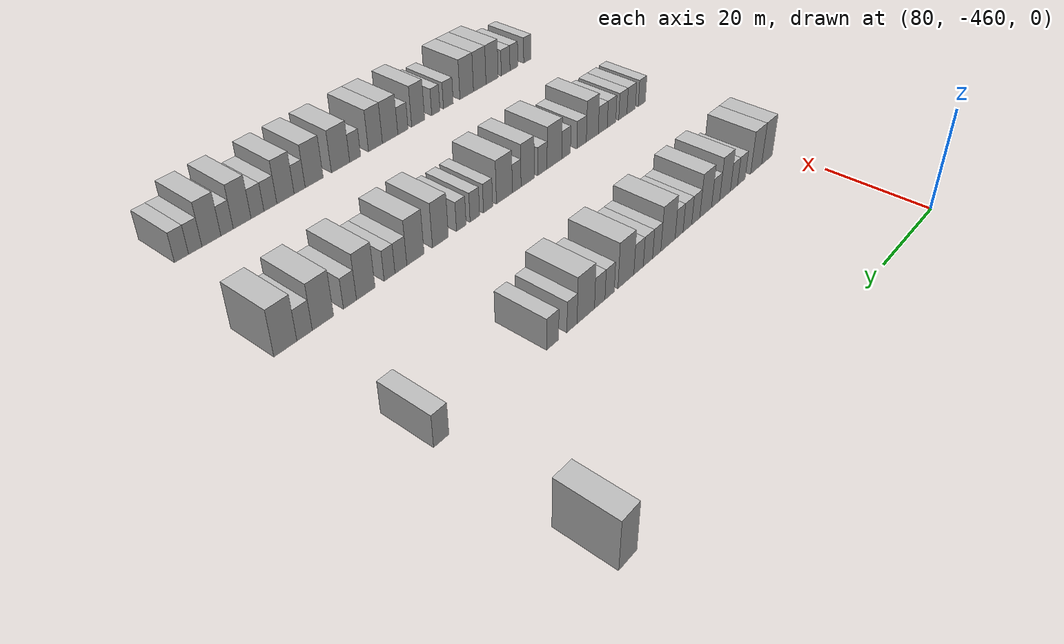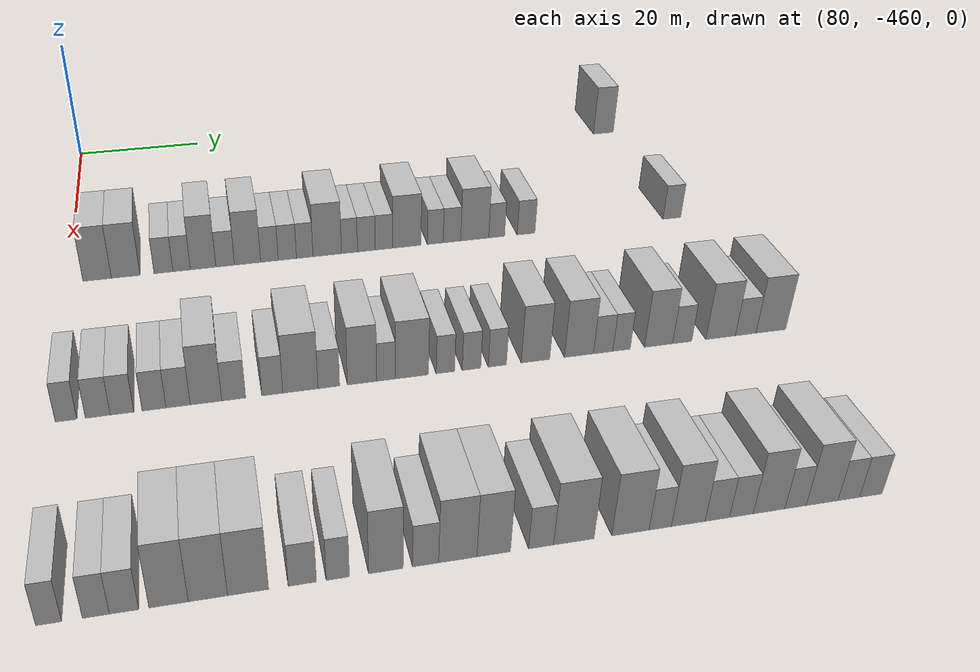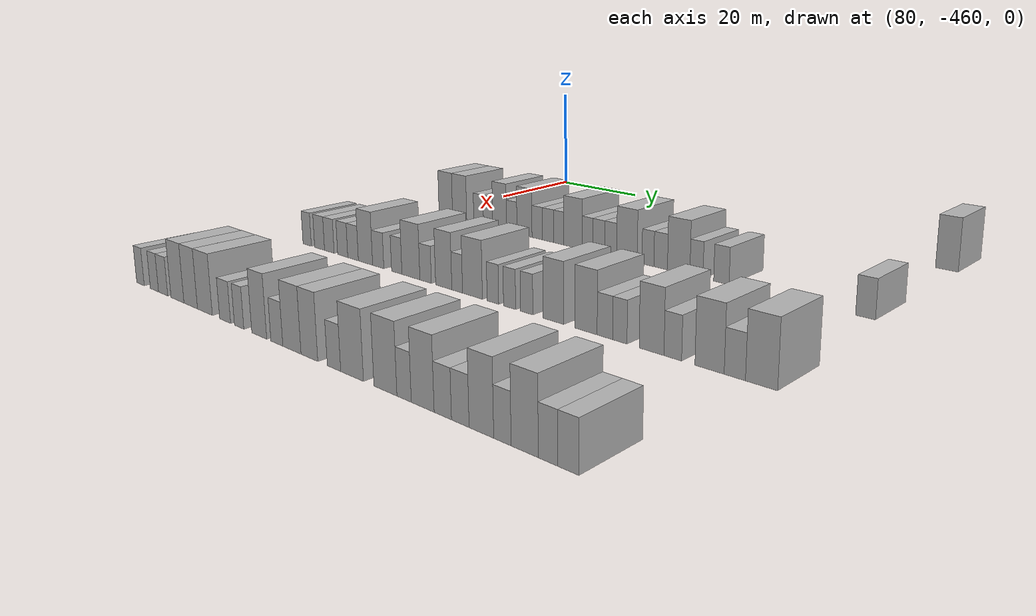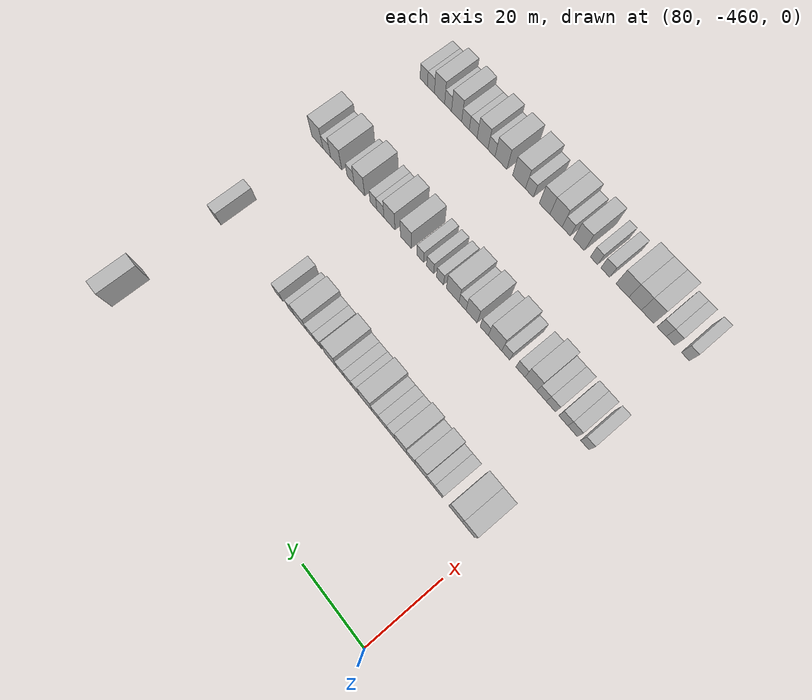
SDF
<sdf version="1.6">
 <world name="default">
  <model name="building_471">
   <static>1</static>
   <pose>85.0000 -368.0938 0 0.000000 0.000000 0.000000</pose>
   <link name="link">
    <pose>0 0 4.50 0 0 0</pose>
    <collision name="collision"><geometry><box><size>10.0000 3.7269 9.0000</size></box></geometry></collision>
    <visual name="visual">
     <cast_shadows>0</cast_shadows>
     <geometry><box><size>10.0000 3.7269 9.0000</size></box></geometry>
     <material>
      <script>
       <uri>model://HANNAS_wall/materials/scripts</uri>
       <uri>model://HANNAS_wall/materials/textures</uri>
       <name>vrc/HANNAS_wall</name>
      </script>
     </material>
    </visual>
   </link>
  </model>
  <model name="building_679">
   <static>1</static>
   <pose>115.0000 -456.0039 0 0.000000 0.000000 0.000000</pose>
   <link name="link">
    <pose>0 0 4.50 0 0 0</pose>
    <collision name="collision"><geometry><box><size>10.0000 3.9922 9.0000</size></box></geometry></collision>
    <visual name="visual">
     <cast_shadows>0</cast_shadows>
     <geometry><box><size>10.0000 3.9922 9.0000</size></box></geometry>
     <material>
      <script>
       <uri>model://HANNAS_wall/materials/scripts</uri>
       <uri>model://HANNAS_wall/materials/textures</uri>
       <name>vrc/HANNAS_wall</name>
      </script>
     </material>
    </visual>
   </link>
  </model>
  <model name="building_680">
   <static>1</static>
   <pose>115.0000 -451.9685 0 0.000000 0.000000 0.000000</pose>
   <link name="link">
    <pose>0 0 4.50 0 0 0</pose>
    <collision name="collision"><geometry><box><size>10.0000 4.0785 9.0000</size></box></geometry></collision>
    <visual name="visual">
     <cast_shadows>0</cast_shadows>
     <geometry><box><size>10.0000 4.0785 9.0000</size></box></geometry>
     <material>
      <script>
       <uri>model://HANNAS_wall/materials/scripts</uri>
       <uri>model://HANNAS_wall/materials/textures</uri>
       <name>vrc/HANNAS_wall</name>
      </script>
     </material>
    </visual>
   </link>
  </model>
  <model name="building_681">
   <static>1</static>
   <pose>115.0000 -446.5775 0 0.000000 0.000000 0.000000</pose>
   <link name="link">
    <pose>0 0 3.00 0 0 0</pose>
    <collision name="collision"><geometry><box><size>10.0000 2.7036 6.0000</size></box></geometry></collision>
    <visual name="visual">
     <cast_shadows>0</cast_shadows>
     <geometry><box><size>10.0000 2.7036 6.0000</size></box></geometry>
     <material>
      <script>
       <uri>model://HANNAS_wall/materials/scripts</uri>
       <uri>model://HANNAS_wall/materials/textures</uri>
       <name>vrc/HANNAS_wall</name>
      </script>
     </material>
    </visual>
   </link>
  </model>
  <model name="building_682">
   <static>1</static>
   <pose>115.0000 -443.9707 0 0.000000 0.000000 0.000000</pose>
   <link name="link">
    <pose>0 0 3.00 0 0 0</pose>
    <collision name="collision"><geometry><box><size>10.0000 2.5101 6.0000</size></box></geometry></collision>
    <visual name="visual">
     <cast_shadows>0</cast_shadows>
     <geometry><box><size>10.0000 2.5101 6.0000</size></box></geometry>
     <material>
      <script>
       <uri>model://HANNAS_wall/materials/scripts</uri>
       <uri>model://HANNAS_wall/materials/textures</uri>
       <name>vrc/HANNAS_wall</name>
      </script>
     </material>
    </visual>
   </link>
  </model>
  <model name="building_683">
   <static>1</static>
   <pose>115.0000 -440.8675 0 0.000000 0.000000 0.000000</pose>
   <link name="link">
    <pose>0 0 4.50 0 0 0</pose>
    <collision name="collision"><geometry><box><size>10.0000 3.6963 9.0000</size></box></geometry></collision>
    <visual name="visual">
     <cast_shadows>0</cast_shadows>
     <geometry><box><size>10.0000 3.6963 9.0000</size></box></geometry>
     <material>
      <script>
       <uri>model://HANNAS_wall/materials/scripts</uri>
       <uri>model://HANNAS_wall/materials/textures</uri>
       <name>vrc/HANNAS_wall</name>
      </script>
     </material>
    </visual>
   </link>
  </model>
  <model name="building_684">
   <static>1</static>
   <pose>115.0000 -437.6574 0 0.000000 0.000000 0.000000</pose>
   <link name="link">
    <pose>0 0 3.00 0 0 0</pose>
    <collision name="collision"><geometry><box><size>10.0000 2.7238 6.0000</size></box></geometry></collision>
    <visual name="visual">
     <cast_shadows>0</cast_shadows>
     <geometry><box><size>10.0000 2.7238 6.0000</size></box></geometry>
     <material>
      <script>
       <uri>model://HANNAS_wall/materials/scripts</uri>
       <uri>model://HANNAS_wall/materials/textures</uri>
       <name>vrc/HANNAS_wall</name>
      </script>
     </material>
    </visual>
   </link>
  </model>
  <model name="building_685">
   <static>1</static>
   <pose>115.0000 -434.3771 0 0.000000 0.000000 0.000000</pose>
   <link name="link">
    <pose>0 0 4.50 0 0 0</pose>
    <collision name="collision"><geometry><box><size>10.0000 3.8368 9.0000</size></box></geometry></collision>
    <visual name="visual">
     <cast_shadows>0</cast_shadows>
     <geometry><box><size>10.0000 3.8368 9.0000</size></box></geometry>
     <material>
      <script>
       <uri>model://HANNAS_wall/materials/scripts</uri>
       <uri>model://HANNAS_wall/materials/textures</uri>
       <name>vrc/HANNAS_wall</name>
      </script>
     </material>
    </visual>
   </link>
  </model>
  <model name="building_686">
   <static>1</static>
   <pose>115.0000 -431.1554 0 0.000000 0.000000 0.000000</pose>
   <link name="link">
    <pose>0 0 3.00 0 0 0</pose>
    <collision name="collision"><geometry><box><size>10.0000 2.6065 6.0000</size></box></geometry></collision>
    <visual name="visual">
     <cast_shadows>0</cast_shadows>
     <geometry><box><size>10.0000 2.6065 6.0000</size></box></geometry>
     <material>
      <script>
       <uri>model://HANNAS_wall/materials/scripts</uri>
       <uri>model://HANNAS_wall/materials/textures</uri>
       <name>vrc/HANNAS_wall</name>
      </script>
     </material>
    </visual>
   </link>
  </model>
  <model name="building_687">
   <static>1</static>
   <pose>115.0000 -428.4947 0 0.000000 0.000000 0.000000</pose>
   <link name="link">
    <pose>0 0 3.00 0 0 0</pose>
    <collision name="collision"><geometry><box><size>10.0000 2.7149 6.0000</size></box></geometry></collision>
    <visual name="visual">
     <cast_shadows>0</cast_shadows>
     <geometry><box><size>10.0000 2.7149 6.0000</size></box></geometry>
     <material>
      <script>
       <uri>model://HANNAS_wall/materials/scripts</uri>
       <uri>model://HANNAS_wall/materials/textures</uri>
       <name>vrc/HANNAS_wall</name>
      </script>
     </material>
    </visual>
   </link>
  </model>
  <model name="building_688">
   <static>1</static>
   <pose>115.0000 -425.9060 0 0.000000 0.000000 0.000000</pose>
   <link name="link">
    <pose>0 0 3.00 0 0 0</pose>
    <collision name="collision"><geometry><box><size>10.0000 2.4627 6.0000</size></box></geometry></collision>
    <visual name="visual">
     <cast_shadows>0</cast_shadows>
     <geometry><box><size>10.0000 2.4627 6.0000</size></box></geometry>
     <material>
      <script>
       <uri>model://HANNAS_wall/materials/scripts</uri>
       <uri>model://HANNAS_wall/materials/textures</uri>
       <name>vrc/HANNAS_wall</name>
      </script>
     </material>
    </visual>
   </link>
  </model>
  <model name="building_689">
   <static>1</static>
   <pose>115.0000 -422.5304 0 0.000000 0.000000 0.000000</pose>
   <link name="link">
    <pose>0 0 4.50 0 0 0</pose>
    <collision name="collision"><geometry><box><size>10.0000 4.2885 9.0000</size></box></geometry></collision>
    <visual name="visual">
     <cast_shadows>0</cast_shadows>
     <geometry><box><size>10.0000 4.2885 9.0000</size></box></geometry>
     <material>
      <script>
       <uri>model://HANNAS_wall/materials/scripts</uri>
       <uri>model://HANNAS_wall/materials/textures</uri>
       <name>vrc/HANNAS_wall</name>
      </script>
     </material>
    </visual>
   </link>
  </model>
  <model name="building_690">
   <static>1</static>
   <pose>115.0000 -419.1778 0 0.000000 0.000000 0.000000</pose>
   <link name="link">
    <pose>0 0 3.00 0 0 0</pose>
    <collision name="collision"><geometry><box><size>10.0000 2.4166 6.0000</size></box></geometry></collision>
    <visual name="visual">
     <cast_shadows>0</cast_shadows>
     <geometry><box><size>10.0000 2.4166 6.0000</size></box></geometry>
     <material>
      <script>
       <uri>model://HANNAS_wall/materials/scripts</uri>
       <uri>model://HANNAS_wall/materials/textures</uri>
       <name>vrc/HANNAS_wall</name>
      </script>
     </material>
    </visual>
   </link>
  </model>
  <model name="building_691">
   <static>1</static>
   <pose>115.0000 -416.6265 0 0.000000 0.000000 0.000000</pose>
   <link name="link">
    <pose>0 0 3.00 0 0 0</pose>
    <collision name="collision"><geometry><box><size>10.0000 2.6860 6.0000</size></box></geometry></collision>
    <visual name="visual">
     <cast_shadows>0</cast_shadows>
     <geometry><box><size>10.0000 2.6860 6.0000</size></box></geometry>
     <material>
      <script>
       <uri>model://HANNAS_wall/materials/scripts</uri>
       <uri>model://HANNAS_wall/materials/textures</uri>
       <name>vrc/HANNAS_wall</name>
      </script>
     </material>
    </visual>
   </link>
  </model>
  <model name="building_692">
   <static>1</static>
   <pose>115.0000 -413.9467 0 0.000000 0.000000 0.000000</pose>
   <link name="link">
    <pose>0 0 3.00 0 0 0</pose>
    <collision name="collision"><geometry><box><size>10.0000 2.6737 6.0000</size></box></geometry></collision>
    <visual name="visual">
     <cast_shadows>0</cast_shadows>
     <geometry><box><size>10.0000 2.6737 6.0000</size></box></geometry>
     <material>
      <script>
       <uri>model://HANNAS_wall/materials/scripts</uri>
       <uri>model://HANNAS_wall/materials/textures</uri>
       <name>vrc/HANNAS_wall</name>
      </script>
     </material>
    </visual>
   </link>
  </model>
  <model name="building_693">
   <static>1</static>
   <pose>115.0000 -410.4231 0 0.000000 0.000000 0.000000</pose>
   <link name="link">
    <pose>0 0 4.50 0 0 0</pose>
    <collision name="collision"><geometry><box><size>10.0000 4.3735 9.0000</size></box></geometry></collision>
    <visual name="visual">
     <cast_shadows>0</cast_shadows>
     <geometry><box><size>10.0000 4.3735 9.0000</size></box></geometry>
     <material>
      <script>
       <uri>model://HANNAS_wall/materials/scripts</uri>
       <uri>model://HANNAS_wall/materials/textures</uri>
       <name>vrc/HANNAS_wall</name>
      </script>
     </material>
    </visual>
   </link>
  </model>
  <model name="building_694">
   <static>1</static>
   <pose>115.0000 -406.0048 0 0.000000 0.000000 0.000000</pose>
   <link name="link">
    <pose>0 0 3.00 0 0 0</pose>
    <collision name="collision"><geometry><box><size>10.0000 2.4631 6.0000</size></box></geometry></collision>
    <visual name="visual">
     <cast_shadows>0</cast_shadows>
     <geometry><box><size>10.0000 2.4631 6.0000</size></box></geometry>
     <material>
      <script>
       <uri>model://HANNAS_wall/materials/scripts</uri>
       <uri>model://HANNAS_wall/materials/textures</uri>
       <name>vrc/HANNAS_wall</name>
      </script>
     </material>
    </visual>
   </link>
  </model>
  <model name="building_695">
   <static>1</static>
   <pose>115.0000 -403.4046 0 0.000000 0.000000 0.000000</pose>
   <link name="link">
    <pose>0 0 3.00 0 0 0</pose>
    <collision name="collision"><geometry><box><size>10.0000 2.7374 6.0000</size></box></geometry></collision>
    <visual name="visual">
     <cast_shadows>0</cast_shadows>
     <geometry><box><size>10.0000 2.7374 6.0000</size></box></geometry>
     <material>
      <script>
       <uri>model://HANNAS_wall/materials/scripts</uri>
       <uri>model://HANNAS_wall/materials/textures</uri>
       <name>vrc/HANNAS_wall</name>
      </script>
     </material>
    </visual>
   </link>
  </model>
  <model name="building_696">
   <static>1</static>
   <pose>115.0000 -399.8313 0 0.000000 0.000000 0.000000</pose>
   <link name="link">
    <pose>0 0 4.50 0 0 0</pose>
    <collision name="collision"><geometry><box><size>10.0000 4.4091 9.0000</size></box></geometry></collision>
    <visual name="visual">
     <cast_shadows>0</cast_shadows>
     <geometry><box><size>10.0000 4.4091 9.0000</size></box></geometry>
     <material>
      <script>
       <uri>model://HANNAS_wall/materials/scripts</uri>
       <uri>model://HANNAS_wall/materials/textures</uri>
       <name>vrc/HANNAS_wall</name>
      </script>
     </material>
    </visual>
   </link>
  </model>
  <model name="building_697">
   <static>1</static>
   <pose>115.0000 -396.3720 0 0.000000 0.000000 0.000000</pose>
   <link name="link">
    <pose>0 0 3.00 0 0 0</pose>
    <collision name="collision"><geometry><box><size>10.0000 2.5096 6.0000</size></box></geometry></collision>
    <visual name="visual">
     <cast_shadows>0</cast_shadows>
     <geometry><box><size>10.0000 2.5096 6.0000</size></box></geometry>
     <material>
      <script>
       <uri>model://HANNAS_wall/materials/scripts</uri>
       <uri>model://HANNAS_wall/materials/textures</uri>
       <name>vrc/HANNAS_wall</name>
      </script>
     </material>
    </visual>
   </link>
  </model>
  <model name="building_698">
   <static>1</static>
   <pose>115.0000 -391.6978 0 0.000000 0.000000 0.000000</pose>
   <link name="link">
    <pose>0 0 3.00 0 0 0</pose>
    <collision name="collision"><geometry><box><size>10.0000 2.8389 6.0000</size></box></geometry></collision>
    <visual name="visual">
     <cast_shadows>0</cast_shadows>
     <geometry><box><size>10.0000 2.8389 6.0000</size></box></geometry>
     <material>
      <script>
       <uri>model://HANNAS_wall/materials/scripts</uri>
       <uri>model://HANNAS_wall/materials/textures</uri>
       <name>vrc/HANNAS_wall</name>
      </script>
     </material>
    </visual>
   </link>
  </model>
  <model name="building_699">
   <static>1</static>
   <pose>115.0000 -367.8314 0 0.000000 0.000000 0.000000</pose>
   <link name="link">
    <pose>0 0 3.00 0 0 0</pose>
    <collision name="collision"><geometry><box><size>10.0000 2.9646 6.0000</size></box></geometry></collision>
    <visual name="visual">
     <cast_shadows>0</cast_shadows>
     <geometry><box><size>10.0000 2.9646 6.0000</size></box></geometry>
     <material>
      <script>
       <uri>model://HANNAS_wall/materials/scripts</uri>
       <uri>model://HANNAS_wall/materials/textures</uri>
       <name>vrc/HANNAS_wall</name>
      </script>
     </material>
    </visual>
   </link>
  </model>
  <model name="building_910">
   <static>1</static>
   <pose>145.0000 -458.7280 0 0.000000 0.000000 0.000000</pose>
   <link name="link">
    <pose>0 0 3.00 0 0 0</pose>
    <collision name="collision"><geometry><box><size>10.0000 2.5439 6.0000</size></box></geometry></collision>
    <visual name="visual">
     <cast_shadows>0</cast_shadows>
     <geometry><box><size>10.0000 2.5439 6.0000</size></box></geometry>
     <material>
      <script>
       <uri>model://HANNAS_wall/materials/scripts</uri>
       <uri>model://HANNAS_wall/materials/textures</uri>
       <name>vrc/HANNAS_wall</name>
      </script>
     </material>
    </visual>
   </link>
  </model>
  <model name="building_911">
   <static>1</static>
   <pose>145.0000 -454.9779 0 0.000000 0.000000 0.000000</pose>
   <link name="link">
    <pose>0 0 3.00 0 0 0</pose>
    <collision name="collision"><geometry><box><size>10.0000 2.9563 6.0000</size></box></geometry></collision>
    <visual name="visual">
     <cast_shadows>0</cast_shadows>
     <geometry><box><size>10.0000 2.9563 6.0000</size></box></geometry>
     <material>
      <script>
       <uri>model://HANNAS_wall/materials/scripts</uri>
       <uri>model://HANNAS_wall/materials/textures</uri>
       <name>vrc/HANNAS_wall</name>
      </script>
     </material>
    </visual>
   </link>
  </model>
  <model name="building_912">
   <static>1</static>
   <pose>145.0000 -452.0912 0 0.000000 0.000000 0.000000</pose>
   <link name="link">
    <pose>0 0 3.00 0 0 0</pose>
    <collision name="collision"><geometry><box><size>10.0000 2.8171 6.0000</size></box></geometry></collision>
    <visual name="visual">
     <cast_shadows>0</cast_shadows>
     <geometry><box><size>10.0000 2.8171 6.0000</size></box></geometry>
     <material>
      <script>
       <uri>model://HANNAS_wall/materials/scripts</uri>
       <uri>model://HANNAS_wall/materials/textures</uri>
       <name>vrc/HANNAS_wall</name>
      </script>
     </material>
    </visual>
   </link>
  </model>
  <model name="building_913">
   <static>1</static>
   <pose>145.0000 -448.2441 0 0.000000 0.000000 0.000000</pose>
   <link name="link">
    <pose>0 0 3.00 0 0 0</pose>
    <collision name="collision"><geometry><box><size>10.0000 2.8771 6.0000</size></box></geometry></collision>
    <visual name="visual">
     <cast_shadows>0</cast_shadows>
     <geometry><box><size>10.0000 2.8771 6.0000</size></box></geometry>
     <material>
      <script>
       <uri>model://HANNAS_wall/materials/scripts</uri>
       <uri>model://HANNAS_wall/materials/textures</uri>
       <name>vrc/HANNAS_wall</name>
      </script>
     </material>
    </visual>
   </link>
  </model>
  <model name="building_914">
   <static>1</static>
   <pose>145.0000 -445.3330 0 0.000000 0.000000 0.000000</pose>
   <link name="link">
    <pose>0 0 3.00 0 0 0</pose>
    <collision name="collision"><geometry><box><size>10.0000 2.9452 6.0000</size></box></geometry></collision>
    <visual name="visual">
     <cast_shadows>0</cast_shadows>
     <geometry><box><size>10.0000 2.9452 6.0000</size></box></geometry>
     <material>
      <script>
       <uri>model://HANNAS_wall/materials/scripts</uri>
       <uri>model://HANNAS_wall/materials/textures</uri>
       <name>vrc/HANNAS_wall</name>
      </script>
     </material>
    </visual>
   </link>
  </model>
  <model name="building_915">
   <static>1</static>
   <pose>145.0000 -441.9341 0 0.000000 0.000000 0.000000</pose>
   <link name="link">
    <pose>0 0 4.50 0 0 0</pose>
    <collision name="collision"><geometry><box><size>10.0000 3.8527 9.0000</size></box></geometry></collision>
    <visual name="visual">
     <cast_shadows>0</cast_shadows>
     <geometry><box><size>10.0000 3.8527 9.0000</size></box></geometry>
     <material>
      <script>
       <uri>model://HANNAS_wall/materials/scripts</uri>
       <uri>model://HANNAS_wall/materials/textures</uri>
       <name>vrc/HANNAS_wall</name>
      </script>
     </material>
    </visual>
   </link>
  </model>
  <model name="building_916">
   <static>1</static>
   <pose>145.0000 -438.5294 0 0.000000 0.000000 0.000000</pose>
   <link name="link">
    <pose>0 0 3.00 0 0 0</pose>
    <collision name="collision"><geometry><box><size>10.0000 2.9567 6.0000</size></box></geometry></collision>
    <visual name="visual">
     <cast_shadows>0</cast_shadows>
     <geometry><box><size>10.0000 2.9567 6.0000</size></box></geometry>
     <material>
      <script>
       <uri>model://HANNAS_wall/materials/scripts</uri>
       <uri>model://HANNAS_wall/materials/textures</uri>
       <name>vrc/HANNAS_wall</name>
      </script>
     </material>
    </visual>
   </link>
  </model>
  <model name="building_917">
   <static>1</static>
   <pose>145.0000 -433.7373 0 0.000000 0.000000 0.000000</pose>
   <link name="link">
    <pose>0 0 3.00 0 0 0</pose>
    <collision name="collision"><geometry><box><size>10.0000 2.6275 6.0000</size></box></geometry></collision>
    <visual name="visual">
     <cast_shadows>0</cast_shadows>
     <geometry><box><size>10.0000 2.6275 6.0000</size></box></geometry>
     <material>
      <script>
       <uri>model://HANNAS_wall/materials/scripts</uri>
       <uri>model://HANNAS_wall/materials/textures</uri>
       <name>vrc/HANNAS_wall</name>
      </script>
     </material>
    </visual>
   </link>
  </model>
  <model name="building_918">
   <static>1</static>
   <pose>145.0000 -430.2110 0 0.000000 0.000000 0.000000</pose>
   <link name="link">
    <pose>0 0 4.50 0 0 0</pose>
    <collision name="collision"><geometry><box><size>10.0000 4.4251 9.0000</size></box></geometry></collision>
    <visual name="visual">
     <cast_shadows>0</cast_shadows>
     <geometry><box><size>10.0000 4.4251 9.0000</size></box></geometry>
     <material>
      <script>
       <uri>model://HANNAS_wall/materials/scripts</uri>
       <uri>model://HANNAS_wall/materials/textures</uri>
       <name>vrc/HANNAS_wall</name>
      </script>
     </material>
    </visual>
   </link>
  </model>
  <model name="building_919">
   <static>1</static>
   <pose>145.0000 -426.6267 0 0.000000 0.000000 0.000000</pose>
   <link name="link">
    <pose>0 0 3.00 0 0 0</pose>
    <collision name="collision"><geometry><box><size>10.0000 2.7434 6.0000</size></box></geometry></collision>
    <visual name="visual">
     <cast_shadows>0</cast_shadows>
     <geometry><box><size>10.0000 2.7434 6.0000</size></box></geometry>
     <material>
      <script>
       <uri>model://HANNAS_wall/materials/scripts</uri>
       <uri>model://HANNAS_wall/materials/textures</uri>
       <name>vrc/HANNAS_wall</name>
      </script>
     </material>
    </visual>
   </link>
  </model>
  <model name="building_920">
   <static>1</static>
   <pose>145.0000 -422.3842 0 0.000000 0.000000 0.000000</pose>
   <link name="link">
    <pose>0 0 4.50 0 0 0</pose>
    <collision name="collision"><geometry><box><size>10.0000 3.7416 9.0000</size></box></geometry></collision>
    <visual name="visual">
     <cast_shadows>0</cast_shadows>
     <geometry><box><size>10.0000 3.7416 9.0000</size></box></geometry>
     <material>
      <script>
       <uri>model://HANNAS_wall/materials/scripts</uri>
       <uri>model://HANNAS_wall/materials/textures</uri>
       <name>vrc/HANNAS_wall</name>
      </script>
     </material>
    </visual>
   </link>
  </model>
  <model name="building_921">
   <static>1</static>
   <pose>145.0000 -419.3112 0 0.000000 0.000000 0.000000</pose>
   <link name="link">
    <pose>0 0 3.00 0 0 0</pose>
    <collision name="collision"><geometry><box><size>10.0000 2.4042 6.0000</size></box></geometry></collision>
    <visual name="visual">
     <cast_shadows>0</cast_shadows>
     <geometry><box><size>10.0000 2.4042 6.0000</size></box></geometry>
     <material>
      <script>
       <uri>model://HANNAS_wall/materials/scripts</uri>
       <uri>model://HANNAS_wall/materials/textures</uri>
       <name>vrc/HANNAS_wall</name>
      </script>
     </material>
    </visual>
   </link>
  </model>
  <model name="building_922">
   <static>1</static>
   <pose>145.0000 -415.9417 0 0.000000 0.000000 0.000000</pose>
   <link name="link">
    <pose>0 0 4.50 0 0 0</pose>
    <collision name="collision"><geometry><box><size>10.0000 4.3348 9.0000</size></box></geometry></collision>
    <visual name="visual">
     <cast_shadows>0</cast_shadows>
     <geometry><box><size>10.0000 4.3348 9.0000</size></box></geometry>
     <material>
      <script>
       <uri>model://HANNAS_wall/materials/scripts</uri>
       <uri>model://HANNAS_wall/materials/textures</uri>
       <name>vrc/HANNAS_wall</name>
      </script>
     </material>
    </visual>
   </link>
  </model>
  <model name="building_923">
   <static>1</static>
   <pose>145.0000 -411.5587 0 0.000000 0.000000 0.000000</pose>
   <link name="link">
    <pose>0 0 3.00 0 0 0</pose>
    <collision name="collision"><geometry><box><size>10.0000 2.4312 6.0000</size></box></geometry></collision>
    <visual name="visual">
     <cast_shadows>0</cast_shadows>
     <geometry><box><size>10.0000 2.4312 6.0000</size></box></geometry>
     <material>
      <script>
       <uri>model://HANNAS_wall/materials/scripts</uri>
       <uri>model://HANNAS_wall/materials/textures</uri>
       <name>vrc/HANNAS_wall</name>
      </script>
     </material>
    </visual>
   </link>
  </model>
  <model name="building_924">
   <static>1</static>
   <pose>145.0000 -408.1104 0 0.000000 0.000000 0.000000</pose>
   <link name="link">
    <pose>0 0 3.00 0 0 0</pose>
    <collision name="collision"><geometry><box><size>10.0000 2.4654 6.0000</size></box></geometry></collision>
    <visual name="visual">
     <cast_shadows>0</cast_shadows>
     <geometry><box><size>10.0000 2.4654 6.0000</size></box></geometry>
     <material>
      <script>
       <uri>model://HANNAS_wall/materials/scripts</uri>
       <uri>model://HANNAS_wall/materials/textures</uri>
       <name>vrc/HANNAS_wall</name>
      </script>
     </material>
    </visual>
   </link>
  </model>
  <model name="building_925">
   <static>1</static>
   <pose>145.0000 -404.6691 0 0.000000 0.000000 0.000000</pose>
   <link name="link">
    <pose>0 0 3.00 0 0 0</pose>
    <collision name="collision"><geometry><box><size>10.0000 2.4172 6.0000</size></box></geometry></collision>
    <visual name="visual">
     <cast_shadows>0</cast_shadows>
     <geometry><box><size>10.0000 2.4172 6.0000</size></box></geometry>
     <material>
      <script>
       <uri>model://HANNAS_wall/materials/scripts</uri>
       <uri>model://HANNAS_wall/materials/textures</uri>
       <name>vrc/HANNAS_wall</name>
      </script>
     </material>
    </visual>
   </link>
  </model>
  <model name="building_926">
   <static>1</static>
   <pose>145.0000 -399.5326 0 0.000000 0.000000 0.000000</pose>
   <link name="link">
    <pose>0 0 4.50 0 0 0</pose>
    <collision name="collision"><geometry><box><size>10.0000 3.8558 9.0000</size></box></geometry></collision>
    <visual name="visual">
     <cast_shadows>0</cast_shadows>
     <geometry><box><size>10.0000 3.8558 9.0000</size></box></geometry>
     <material>
      <script>
       <uri>model://HANNAS_wall/materials/scripts</uri>
       <uri>model://HANNAS_wall/materials/textures</uri>
       <name>vrc/HANNAS_wall</name>
      </script>
     </material>
    </visual>
   </link>
  </model>
  <model name="building_927">
   <static>1</static>
   <pose>145.0000 -393.6083 0 0.000000 0.000000 0.000000</pose>
   <link name="link">
    <pose>0 0 4.50 0 0 0</pose>
    <collision name="collision"><geometry><box><size>10.0000 3.9929 9.0000</size></box></geometry></collision>
    <visual name="visual">
     <cast_shadows>0</cast_shadows>
     <geometry><box><size>10.0000 3.9929 9.0000</size></box></geometry>
     <material>
      <script>
       <uri>model://HANNAS_wall/materials/scripts</uri>
       <uri>model://HANNAS_wall/materials/textures</uri>
       <name>vrc/HANNAS_wall</name>
      </script>
     </material>
    </visual>
   </link>
  </model>
  <model name="building_928">
   <static>1</static>
   <pose>145.0000 -390.2756 0 0.000000 0.000000 0.000000</pose>
   <link name="link">
    <pose>0 0 3.00 0 0 0</pose>
    <collision name="collision"><geometry><box><size>10.0000 2.6724 6.0000</size></box></geometry></collision>
    <visual name="visual">
     <cast_shadows>0</cast_shadows>
     <geometry><box><size>10.0000 2.6724 6.0000</size></box></geometry>
     <material>
      <script>
       <uri>model://HANNAS_wall/materials/scripts</uri>
       <uri>model://HANNAS_wall/materials/textures</uri>
       <name>vrc/HANNAS_wall</name>
      </script>
     </material>
    </visual>
   </link>
  </model>
  <model name="building_929">
   <static>1</static>
   <pose>145.0000 -387.7366 0 0.000000 0.000000 0.000000</pose>
   <link name="link">
    <pose>0 0 3.00 0 0 0</pose>
    <collision name="collision"><geometry><box><size>10.0000 2.4055 6.0000</size></box></geometry></collision>
    <visual name="visual">
     <cast_shadows>0</cast_shadows>
     <geometry><box><size>10.0000 2.4055 6.0000</size></box></geometry>
     <material>
      <script>
       <uri>model://HANNAS_wall/materials/scripts</uri>
       <uri>model://HANNAS_wall/materials/textures</uri>
       <name>vrc/HANNAS_wall</name>
      </script>
     </material>
    </visual>
   </link>
  </model>
  <model name="building_930">
   <static>1</static>
   <pose>145.0000 -382.5603 0 0.000000 0.000000 0.000000</pose>
   <link name="link">
    <pose>0 0 4.50 0 0 0</pose>
    <collision name="collision"><geometry><box><size>10.0000 3.9471 9.0000</size></box></geometry></collision>
    <visual name="visual">
     <cast_shadows>0</cast_shadows>
     <geometry><box><size>10.0000 3.9471 9.0000</size></box></geometry>
     <material>
      <script>
       <uri>model://HANNAS_wall/materials/scripts</uri>
       <uri>model://HANNAS_wall/materials/textures</uri>
       <name>vrc/HANNAS_wall</name>
      </script>
     </material>
    </visual>
   </link>
  </model>
  <model name="building_931">
   <static>1</static>
   <pose>145.0000 -379.2288 0 0.000000 0.000000 0.000000</pose>
   <link name="link">
    <pose>0 0 3.00 0 0 0</pose>
    <collision name="collision"><geometry><box><size>10.0000 2.7158 6.0000</size></box></geometry></collision>
    <visual name="visual">
     <cast_shadows>0</cast_shadows>
     <geometry><box><size>10.0000 2.7158 6.0000</size></box></geometry>
     <material>
      <script>
       <uri>model://HANNAS_wall/materials/scripts</uri>
       <uri>model://HANNAS_wall/materials/textures</uri>
       <name>vrc/HANNAS_wall</name>
      </script>
     </material>
    </visual>
   </link>
  </model>
  <model name="building_932">
   <static>1</static>
   <pose>145.0000 -373.7501 0 0.000000 0.000000 0.000000</pose>
   <link name="link">
    <pose>0 0 4.50 0 0 0</pose>
    <collision name="collision"><geometry><box><size>10.0000 4.2416 9.0000</size></box></geometry></collision>
    <visual name="visual">
     <cast_shadows>0</cast_shadows>
     <geometry><box><size>10.0000 4.2416 9.0000</size></box></geometry>
     <material>
      <script>
       <uri>model://HANNAS_wall/materials/scripts</uri>
       <uri>model://HANNAS_wall/materials/textures</uri>
       <name>vrc/HANNAS_wall</name>
      </script>
     </material>
    </visual>
   </link>
  </model>
  <model name="building_933">
   <static>1</static>
   <pose>145.0000 -370.1407 0 0.000000 0.000000 0.000000</pose>
   <link name="link">
    <pose>0 0 3.00 0 0 0</pose>
    <collision name="collision"><geometry><box><size>10.0000 2.9772 6.0000</size></box></geometry></collision>
    <visual name="visual">
     <cast_shadows>0</cast_shadows>
     <geometry><box><size>10.0000 2.9772 6.0000</size></box></geometry>
     <material>
      <script>
       <uri>model://HANNAS_wall/materials/scripts</uri>
       <uri>model://HANNAS_wall/materials/textures</uri>
       <name>vrc/HANNAS_wall</name>
      </script>
     </material>
    </visual>
   </link>
  </model>
  <model name="building_934">
   <static>1</static>
   <pose>145.0000 -366.4869 0 0.000000 0.000000 0.000000</pose>
   <link name="link">
    <pose>0 0 4.50 0 0 0</pose>
    <collision name="collision"><geometry><box><size>10.0000 4.3306 9.0000</size></box></geometry></collision>
    <visual name="visual">
     <cast_shadows>0</cast_shadows>
     <geometry><box><size>10.0000 4.3306 9.0000</size></box></geometry>
     <material>
      <script>
       <uri>model://HANNAS_wall/materials/scripts</uri>
       <uri>model://HANNAS_wall/materials/textures</uri>
       <name>vrc/HANNAS_wall</name>
      </script>
     </material>
    </visual>
   </link>
  </model>
  <model name="building_1137">
   <static>1</static>
   <pose>175.0000 -458.7647 0 0.000000 0.000000 0.000000</pose>
   <link name="link">
    <pose>0 0 3.00 0 0 0</pose>
    <collision name="collision"><geometry><box><size>10.0000 2.4705 6.0000</size></box></geometry></collision>
    <visual name="visual">
     <cast_shadows>0</cast_shadows>
     <geometry><box><size>10.0000 2.4705 6.0000</size></box></geometry>
     <material>
      <script>
       <uri>model://HANNAS_wall/materials/scripts</uri>
       <uri>model://HANNAS_wall/materials/textures</uri>
       <name>vrc/HANNAS_wall</name>
      </script>
     </material>
    </visual>
   </link>
  </model>
  <model name="building_1138">
   <static>1</static>
   <pose>175.0000 -454.2290 0 0.000000 0.000000 0.000000</pose>
   <link name="link">
    <pose>0 0 3.00 0 0 0</pose>
    <collision name="collision"><geometry><box><size>10.0000 2.6011 6.0000</size></box></geometry></collision>
    <visual name="visual">
     <cast_shadows>0</cast_shadows>
     <geometry><box><size>10.0000 2.6011 6.0000</size></box></geometry>
     <material>
      <script>
       <uri>model://HANNAS_wall/materials/scripts</uri>
       <uri>model://HANNAS_wall/materials/textures</uri>
       <name>vrc/HANNAS_wall</name>
      </script>
     </material>
    </visual>
   </link>
  </model>
  <model name="building_1139">
   <static>1</static>
   <pose>175.0000 -451.4967 0 0.000000 0.000000 0.000000</pose>
   <link name="link">
    <pose>0 0 3.00 0 0 0</pose>
    <collision name="collision"><geometry><box><size>10.0000 2.8635 6.0000</size></box></geometry></collision>
    <visual name="visual">
     <cast_shadows>0</cast_shadows>
     <geometry><box><size>10.0000 2.8635 6.0000</size></box></geometry>
     <material>
      <script>
       <uri>model://HANNAS_wall/materials/scripts</uri>
       <uri>model://HANNAS_wall/materials/textures</uri>
       <name>vrc/HANNAS_wall</name>
      </script>
     </material>
    </visual>
   </link>
  </model>
  <model name="building_1140">
   <static>1</static>
   <pose>175.0000 -447.1238 0 0.000000 0.000000 0.000000</pose>
   <link name="link">
    <pose>0 0 4.50 0 0 0</pose>
    <collision name="collision"><geometry><box><size>10.0000 3.8822 9.0000</size></box></geometry></collision>
    <visual name="visual">
     <cast_shadows>0</cast_shadows>
     <geometry><box><size>10.0000 3.8822 9.0000</size></box></geometry>
     <material>
      <script>
       <uri>model://HANNAS_wall/materials/scripts</uri>
       <uri>model://HANNAS_wall/materials/textures</uri>
       <name>vrc/HANNAS_wall</name>
      </script>
     </material>
    </visual>
   </link>
  </model>
  <model name="building_1141">
   <static>1</static>
   <pose>175.0000 -443.2227 0 0.000000 0.000000 0.000000</pose>
   <link name="link">
    <pose>0 0 4.50 0 0 0</pose>
    <collision name="collision"><geometry><box><size>10.0000 3.9200 9.0000</size></box></geometry></collision>
    <visual name="visual">
     <cast_shadows>0</cast_shadows>
     <geometry><box><size>10.0000 3.9200 9.0000</size></box></geometry>
     <material>
      <script>
       <uri>model://HANNAS_wall/materials/scripts</uri>
       <uri>model://HANNAS_wall/materials/textures</uri>
       <name>vrc/HANNAS_wall</name>
      </script>
     </material>
    </visual>
   </link>
  </model>
  <model name="building_1142">
   <static>1</static>
   <pose>175.0000 -439.1935 0 0.000000 0.000000 0.000000</pose>
   <link name="link">
    <pose>0 0 4.50 0 0 0</pose>
    <collision name="collision"><geometry><box><size>10.0000 4.1383 9.0000</size></box></geometry></collision>
    <visual name="visual">
     <cast_shadows>0</cast_shadows>
     <geometry><box><size>10.0000 4.1383 9.0000</size></box></geometry>
     <material>
      <script>
       <uri>model://HANNAS_wall/materials/scripts</uri>
       <uri>model://HANNAS_wall/materials/textures</uri>
       <name>vrc/HANNAS_wall</name>
      </script>
     </material>
    </visual>
   </link>
  </model>
  <model name="building_1143">
   <static>1</static>
   <pose>175.0000 -433.6758 0 0.000000 0.000000 0.000000</pose>
   <link name="link">
    <pose>0 0 3.00 0 0 0</pose>
    <collision name="collision"><geometry><box><size>10.0000 2.8972 6.0000</size></box></geometry></collision>
    <visual name="visual">
     <cast_shadows>0</cast_shadows>
     <geometry><box><size>10.0000 2.8972 6.0000</size></box></geometry>
     <material>
      <script>
       <uri>model://HANNAS_wall/materials/scripts</uri>
       <uri>model://HANNAS_wall/materials/textures</uri>
       <name>vrc/HANNAS_wall</name>
      </script>
     </material>
    </visual>
   </link>
  </model>
  <model name="building_1144">
   <static>1</static>
   <pose>175.0000 -430.0254 0 0.000000 0.000000 0.000000</pose>
   <link name="link">
    <pose>0 0 3.00 0 0 0</pose>
    <collision name="collision"><geometry><box><size>10.0000 2.4037 6.0000</size></box></geometry></collision>
    <visual name="visual">
     <cast_shadows>0</cast_shadows>
     <geometry><box><size>10.0000 2.4037 6.0000</size></box></geometry>
     <material>
      <script>
       <uri>model://HANNAS_wall/materials/scripts</uri>
       <uri>model://HANNAS_wall/materials/textures</uri>
       <name>vrc/HANNAS_wall</name>
      </script>
     </material>
    </visual>
   </link>
  </model>
  <model name="building_1145">
   <static>1</static>
   <pose>175.0000 -425.0049 0 0.000000 0.000000 0.000000</pose>
   <link name="link">
    <pose>0 0 4.50 0 0 0</pose>
    <collision name="collision"><geometry><box><size>10.0000 3.6373 9.0000</size></box></geometry></collision>
    <visual name="visual">
     <cast_shadows>0</cast_shadows>
     <geometry><box><size>10.0000 3.6373 9.0000</size></box></geometry>
     <material>
      <script>
       <uri>model://HANNAS_wall/materials/scripts</uri>
       <uri>model://HANNAS_wall/materials/textures</uri>
       <name>vrc/HANNAS_wall</name>
      </script>
     </material>
    </visual>
   </link>
  </model>
  <model name="building_1146">
   <static>1</static>
   <pose>175.0000 -420.7916 0 0.000000 0.000000 0.000000</pose>
   <link name="link">
    <pose>0 0 3.00 0 0 0</pose>
    <collision name="collision"><geometry><box><size>10.0000 2.7893 6.0000</size></box></geometry></collision>
    <visual name="visual">
     <cast_shadows>0</cast_shadows>
     <geometry><box><size>10.0000 2.7893 6.0000</size></box></geometry>
     <material>
      <script>
       <uri>model://HANNAS_wall/materials/scripts</uri>
       <uri>model://HANNAS_wall/materials/textures</uri>
       <name>vrc/HANNAS_wall</name>
      </script>
     </material>
    </visual>
   </link>
  </model>
  <model name="building_1147">
   <static>1</static>
   <pose>175.0000 -417.3401 0 0.000000 0.000000 0.000000</pose>
   <link name="link">
    <pose>0 0 4.50 0 0 0</pose>
    <collision name="collision"><geometry><box><size>10.0000 4.1137 9.0000</size></box></geometry></collision>
    <visual name="visual">
     <cast_shadows>0</cast_shadows>
     <geometry><box><size>10.0000 4.1137 9.0000</size></box></geometry>
     <material>
      <script>
       <uri>model://HANNAS_wall/materials/scripts</uri>
       <uri>model://HANNAS_wall/materials/textures</uri>
       <name>vrc/HANNAS_wall</name>
      </script>
     </material>
    </visual>
   </link>
  </model>
  <model name="building_1148">
   <static>1</static>
   <pose>175.0000 -413.4642 0 0.000000 0.000000 0.000000</pose>
   <link name="link">
    <pose>0 0 4.50 0 0 0</pose>
    <collision name="collision"><geometry><box><size>10.0000 3.6380 9.0000</size></box></geometry></collision>
    <visual name="visual">
     <cast_shadows>0</cast_shadows>
     <geometry><box><size>10.0000 3.6380 9.0000</size></box></geometry>
     <material>
      <script>
       <uri>model://HANNAS_wall/materials/scripts</uri>
       <uri>model://HANNAS_wall/materials/textures</uri>
       <name>vrc/HANNAS_wall</name>
      </script>
     </material>
    </visual>
   </link>
  </model>
  <model name="building_1149">
   <static>1</static>
   <pose>175.0000 -408.2629 0 0.000000 0.000000 0.000000</pose>
   <link name="link">
    <pose>0 0 3.00 0 0 0</pose>
    <collision name="collision"><geometry><box><size>10.0000 2.7645 6.0000</size></box></geometry></collision>
    <visual name="visual">
     <cast_shadows>0</cast_shadows>
     <geometry><box><size>10.0000 2.7645 6.0000</size></box></geometry>
     <material>
      <script>
       <uri>model://HANNAS_wall/materials/scripts</uri>
       <uri>model://HANNAS_wall/materials/textures</uri>
       <name>vrc/HANNAS_wall</name>
      </script>
     </material>
    </visual>
   </link>
  </model>
  <model name="building_1150">
   <static>1</static>
   <pose>175.0000 -404.6326 0 0.000000 0.000000 0.000000</pose>
   <link name="link">
    <pose>0 0 4.50 0 0 0</pose>
    <collision name="collision"><geometry><box><size>10.0000 4.4961 9.0000</size></box></geometry></collision>
    <visual name="visual">
     <cast_shadows>0</cast_shadows>
     <geometry><box><size>10.0000 4.4961 9.0000</size></box></geometry>
     <material>
      <script>
       <uri>model://HANNAS_wall/materials/scripts</uri>
       <uri>model://HANNAS_wall/materials/textures</uri>
       <name>vrc/HANNAS_wall</name>
      </script>
     </material>
    </visual>
   </link>
  </model>
  <model name="building_1151">
   <static>1</static>
   <pose>175.0000 -398.2663 0 0.000000 0.000000 0.000000</pose>
   <link name="link">
    <pose>0 0 4.50 0 0 0</pose>
    <collision name="collision"><geometry><box><size>10.0000 4.2363 9.0000</size></box></geometry></collision>
    <visual name="visual">
     <cast_shadows>0</cast_shadows>
     <geometry><box><size>10.0000 4.2363 9.0000</size></box></geometry>
     <material>
      <script>
       <uri>model://HANNAS_wall/materials/scripts</uri>
       <uri>model://HANNAS_wall/materials/textures</uri>
       <name>vrc/HANNAS_wall</name>
      </script>
     </material>
    </visual>
   </link>
  </model>
  <model name="building_1152">
   <static>1</static>
   <pose>175.0000 -394.8743 0 0.000000 0.000000 0.000000</pose>
   <link name="link">
    <pose>0 0 3.00 0 0 0</pose>
    <collision name="collision"><geometry><box><size>10.0000 2.5478 6.0000</size></box></geometry></collision>
    <visual name="visual">
     <cast_shadows>0</cast_shadows>
     <geometry><box><size>10.0000 2.5478 6.0000</size></box></geometry>
     <material>
      <script>
       <uri>model://HANNAS_wall/materials/scripts</uri>
       <uri>model://HANNAS_wall/materials/textures</uri>
       <name>vrc/HANNAS_wall</name>
      </script>
     </material>
    </visual>
   </link>
  </model>
  <model name="building_1153">
   <static>1</static>
   <pose>175.0000 -391.6495 0 0.000000 0.000000 0.000000</pose>
   <link name="link">
    <pose>0 0 4.50 0 0 0</pose>
    <collision name="collision"><geometry><box><size>10.0000 3.9018 9.0000</size></box></geometry></collision>
    <visual name="visual">
     <cast_shadows>0</cast_shadows>
     <geometry><box><size>10.0000 3.9018 9.0000</size></box></geometry>
     <material>
      <script>
       <uri>model://HANNAS_wall/materials/scripts</uri>
       <uri>model://HANNAS_wall/materials/textures</uri>
       <name>vrc/HANNAS_wall</name>
      </script>
     </material>
    </visual>
   </link>
  </model>
  <model name="building_1154">
   <static>1</static>
   <pose>175.0000 -388.2756 0 0.000000 0.000000 0.000000</pose>
   <link name="link">
    <pose>0 0 3.00 0 0 0</pose>
    <collision name="collision"><geometry><box><size>10.0000 2.8461 6.0000</size></box></geometry></collision>
    <visual name="visual">
     <cast_shadows>0</cast_shadows>
     <geometry><box><size>10.0000 2.8461 6.0000</size></box></geometry>
     <material>
      <script>
       <uri>model://HANNAS_wall/materials/scripts</uri>
       <uri>model://HANNAS_wall/materials/textures</uri>
       <name>vrc/HANNAS_wall</name>
      </script>
     </material>
    </visual>
   </link>
  </model>
  <model name="building_1155">
   <static>1</static>
   <pose>175.0000 -385.4561 0 0.000000 0.000000 0.000000</pose>
   <link name="link">
    <pose>0 0 3.00 0 0 0</pose>
    <collision name="collision"><geometry><box><size>10.0000 2.7930 6.0000</size></box></geometry></collision>
    <visual name="visual">
     <cast_shadows>0</cast_shadows>
     <geometry><box><size>10.0000 2.7930 6.0000</size></box></geometry>
     <material>
      <script>
       <uri>model://HANNAS_wall/materials/scripts</uri>
       <uri>model://HANNAS_wall/materials/textures</uri>
       <name>vrc/HANNAS_wall</name>
      </script>
     </material>
    </visual>
   </link>
  </model>
  <model name="building_1156">
   <static>1</static>
   <pose>175.0000 -382.1845 0 0.000000 0.000000 0.000000</pose>
   <link name="link">
    <pose>0 0 4.50 0 0 0</pose>
    <collision name="collision"><geometry><box><size>10.0000 3.7502 9.0000</size></box></geometry></collision>
    <visual name="visual">
     <cast_shadows>0</cast_shadows>
     <geometry><box><size>10.0000 3.7502 9.0000</size></box></geometry>
     <material>
      <script>
       <uri>model://HANNAS_wall/materials/scripts</uri>
       <uri>model://HANNAS_wall/materials/textures</uri>
       <name>vrc/HANNAS_wall</name>
      </script>
     </material>
    </visual>
   </link>
  </model>
  <model name="building_1157">
   <static>1</static>
   <pose>175.0000 -379.0320 0 0.000000 0.000000 0.000000</pose>
   <link name="link">
    <pose>0 0 3.00 0 0 0</pose>
    <collision name="collision"><geometry><box><size>10.0000 2.5548 6.0000</size></box></geometry></collision>
    <visual name="visual">
     <cast_shadows>0</cast_shadows>
     <geometry><box><size>10.0000 2.5548 6.0000</size></box></geometry>
     <material>
      <script>
       <uri>model://HANNAS_wall/materials/scripts</uri>
       <uri>model://HANNAS_wall/materials/textures</uri>
       <name>vrc/HANNAS_wall</name>
      </script>
     </material>
    </visual>
   </link>
  </model>
  <model name="building_1158">
   <static>1</static>
   <pose>175.0000 -375.8413 0 0.000000 0.000000 0.000000</pose>
   <link name="link">
    <pose>0 0 4.50 0 0 0</pose>
    <collision name="collision"><geometry><box><size>10.0000 3.8264 9.0000</size></box></geometry></collision>
    <visual name="visual">
     <cast_shadows>0</cast_shadows>
     <geometry><box><size>10.0000 3.8264 9.0000</size></box></geometry>
     <material>
      <script>
       <uri>model://HANNAS_wall/materials/scripts</uri>
       <uri>model://HANNAS_wall/materials/textures</uri>
       <name>vrc/HANNAS_wall</name>
      </script>
     </material>
    </visual>
   </link>
  </model>
  <model name="building_1159">
   <static>1</static>
   <pose>175.0000 -372.6108 0 0.000000 0.000000 0.000000</pose>
   <link name="link">
    <pose>0 0 3.00 0 0 0</pose>
    <collision name="collision"><geometry><box><size>10.0000 2.6346 6.0000</size></box></geometry></collision>
    <visual name="visual">
     <cast_shadows>0</cast_shadows>
     <geometry><box><size>10.0000 2.6346 6.0000</size></box></geometry>
     <material>
      <script>
       <uri>model://HANNAS_wall/materials/scripts</uri>
       <uri>model://HANNAS_wall/materials/textures</uri>
       <name>vrc/HANNAS_wall</name>
      </script>
     </material>
    </visual>
   </link>
  </model>
  <model name="building_1160">
   <static>1</static>
   <pose>175.0000 -369.9170 0 0.000000 0.000000 0.000000</pose>
   <link name="link">
    <pose>0 0 3.00 0 0 0</pose>
    <collision name="collision"><geometry><box><size>10.0000 2.7530 6.0000</size></box></geometry></collision>
    <visual name="visual">
     <cast_shadows>0</cast_shadows>
     <geometry><box><size>10.0000 2.7530 6.0000</size></box></geometry>
     <material>
      <script>
       <uri>model://HANNAS_wall/materials/scripts</uri>
       <uri>model://HANNAS_wall/materials/textures</uri>
       <name>vrc/HANNAS_wall</name>
      </script>
     </material>
    </visual>
   </link>
  </model>
 </world>
</sdf>
